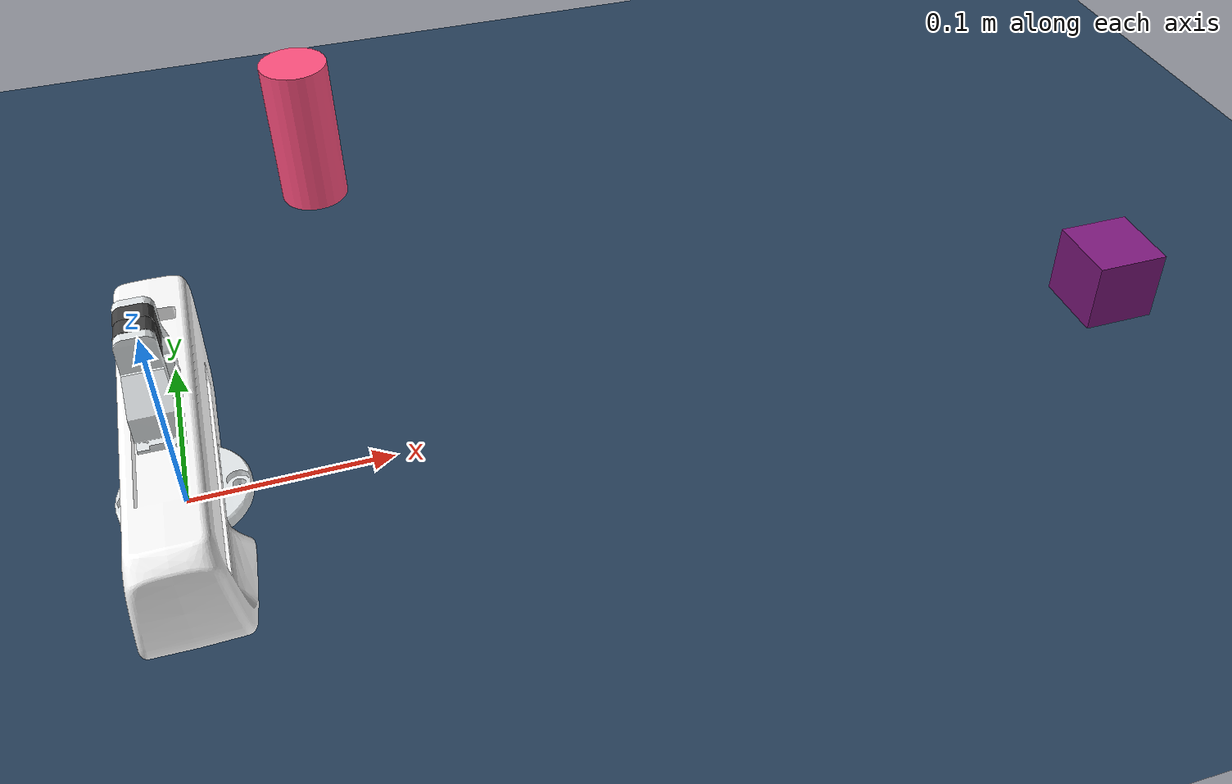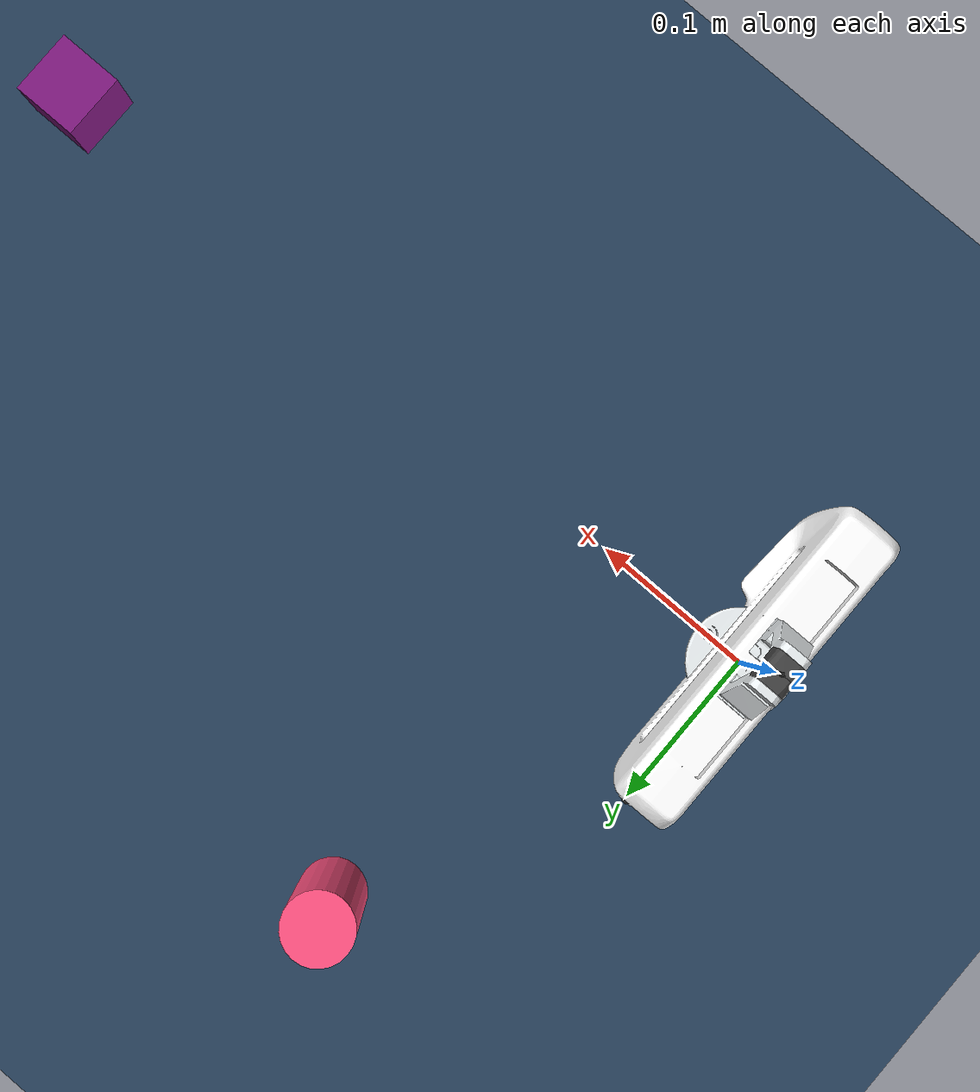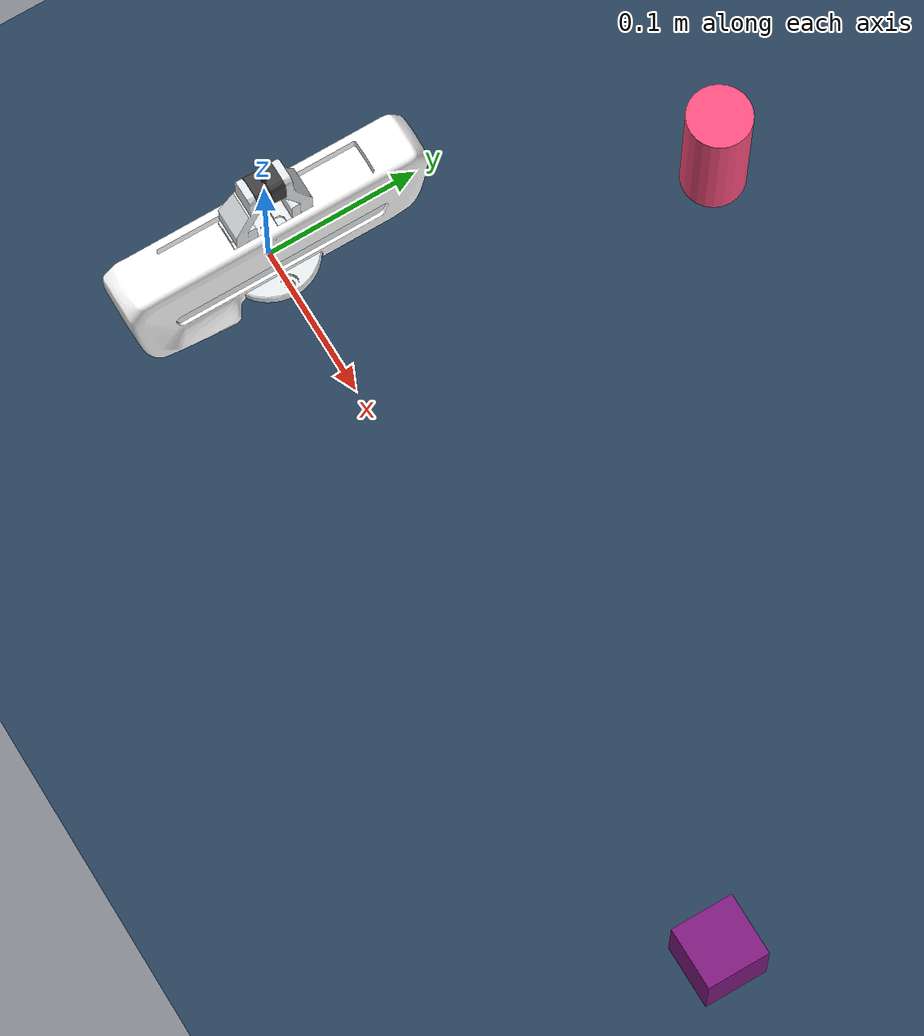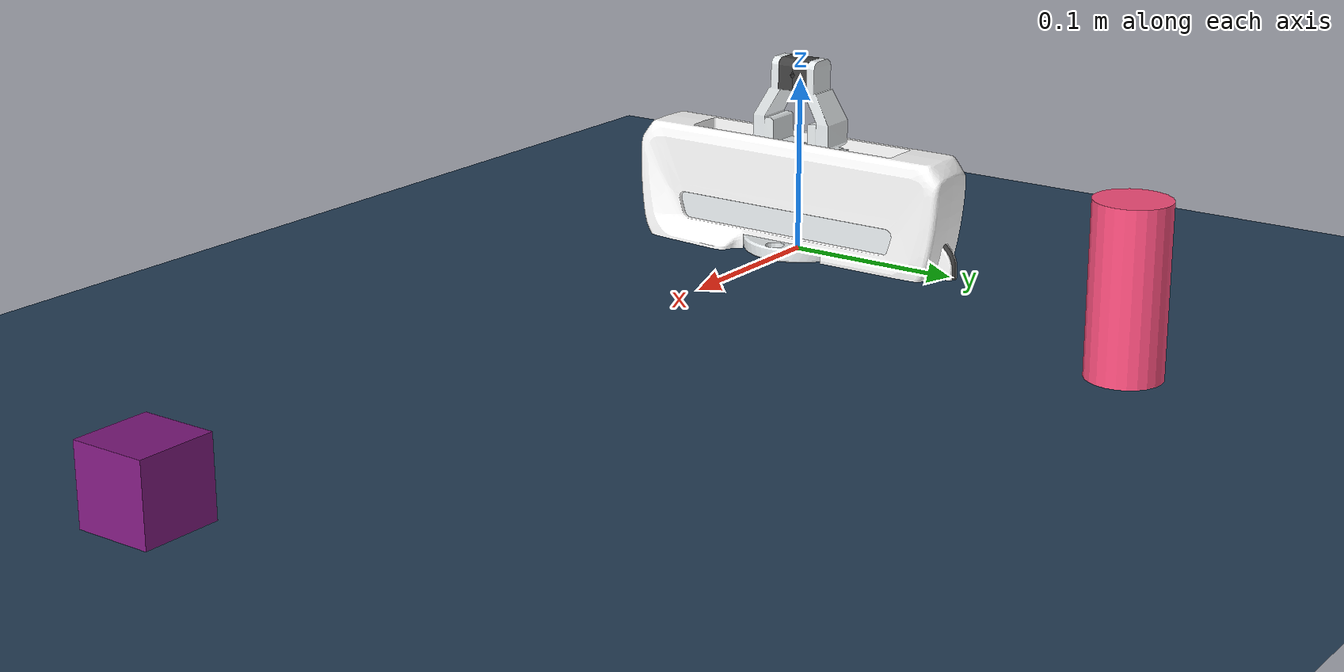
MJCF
<mujoco model="panda scene">

  <include file="k_hand.xml"/>

  <statistic center="0.3 0 0.4" extent="1"/>

  <default>
    <default class="scene">
      <geom contype="10" conaffinity="10"></geom>
    </default>
  </default>

  <visual>
    <headlight diffuse="0.6 0.6 0.6" ambient="0.3 0.3 0.3" specular="0 0 0"/>
    <rgba haze="0.15 0.25 0.35 1"/>
    <global azimuth="120" elevation="-20"/>
  </visual>

  <asset>
    <texture type="skybox" builtin="gradient" rgb1="0.3 0.5 0.7" rgb2="0 0 0" width="512" height="3072"/>
    <texture type="2d" name="groundplane" builtin="checker" mark="edge" rgb1="0.2 0.3 0.4" rgb2="0.1 0.2 0.3"
      markrgb="0.8 0.8 0.8" width="300" height="300"/>
    <material name="groundplane" texture="groundplane" texuniform="true" texrepeat="5 5" reflectance="0.2"/>
  </asset>

  <worldbody>
    <light pos="0 0 1.5" dir="0 0 -1" directional="true"/>
    <geom name="floor" class="scene" size="0 0 0.05" type="plane" material="groundplane"/>
    <body name="box_body" pos="0.5 0 .02"> <!-- this is how you add an object to the scene -->
    	<freejoint name="box_joint"/>
    	<geom name="box_geom" contype="15" conaffinity="15" size=".02 .02 .02" type="box" rgba=".5 .1 .5 1" mass="0.05" friction="2" solimp="0.95 0.99 0.001" solref="0.005 1"/>
    </body>
    <body name="cyl_body" pos="0.0925 0.25 0.04">
    	<freejoint name="cyl_joint"/>
    	<geom name="cyl_geom" contype="15" conaffinity="15" size=".02 .05 .02" type="cylinder" rgba="1 .3125 .5 1" mass="0.05" friction="2" solimp="0.95 0.99 0.001" solref="0.005 1"/>
    </body>
    <body name="test" pos="0.0925 0.25 0.04">
    	<geom name="test" contype="0" conaffinity="0" size=".1 .1 .1" type="sphere" rgba="1 .3125 .5 0" mass="0.05" friction="2" solimp="0.95 0.99 0.001" solref="0.005 1"/>
    </body>

    <body name="body_cam" pos="3 0 .75" xyaxes="0 1 0 0 0 1" mocap="true">
      <camera name="cam" fovy="90"/>
      <geom name="geom_cam" size="0.04 0.04 0.01" type="box" rgba="0 0 0 0" contype="0" conaffinity="0"/>
    </body>
  </worldbody>

</mujoco>

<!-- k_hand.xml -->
<mujoco model="panda hand">
  <compiler angle="radian" meshdir="assets" autolimits="true"/>

  <option integrator="implicitfast"/>

  <default>
    <default class="panda">
      <material specular="0.5" shininess="0.25"/>
      <joint armature="0.1" damping="1" axis="0 0 1" range="-2.8973 2.8973"/>
      <general dyntype="none" biastype="affine" ctrlrange="-2.8973 2.8973" forcerange="-87 87"/>
      <default class="finger">
        <joint axis="0 1 0" type="slide" range="0 0.04"/>
      </default>

      <default class="visual">
        <geom type="mesh" contype="0" conaffinity="0" group="2"/>
      </default>
      <default class="collision">
        <geom type="mesh" group="3" contype="15" conaffinity="15"/>
        <default class="fingertip_pad_collision_1">
          <geom type="box" size="0.0085 0.004 0.0085" pos="0 0.0055 0.0445"/>
        </default>
        <default class="fingertip_pad_collision_2">
          <geom type="box" size="0.003 0.002 0.003" pos="0.0055 0.002 0.05"/>
        </default>
        <default class="fingertip_pad_collision_3">
          <geom type="box" size="0.003 0.002 0.003" pos="-0.0055 0.002 0.05"/>
        </default>
        <default class="fingertip_pad_collision_4">
          <geom type="box" size="0.003 0.002 0.0035" pos="0.0055 0.002 0.0395"/>
        </default>
        <default class="fingertip_pad_collision_5">
          <geom type="box" size="0.003 0.002 0.0035" pos="-0.0055 0.002 0.0395"/>
        </default>
      </default>
    </default>
  </default>

  <asset>
    <material class="panda" name="white" rgba="1 1 1 1"/>
    <material class="panda" name="off_white" rgba="0.901961 0.921569 0.929412 1"/>
    <material class="panda" name="black" rgba="0.25 0.25 0.25 1"/>

    <!-- Collision meshes -->
    <mesh name="hand_c" file="hand.stl"/>

    <!-- Visual meshes -->
    <mesh file="hand_0.obj"/>
    <mesh file="hand_1.obj"/>
    <mesh file="hand_2.obj"/>
    <mesh file="hand_3.obj"/>
    <mesh file="hand_4.obj"/>
    <mesh file="finger_0.obj"/>
    <mesh file="finger_1.obj"/>
  </asset>

  <worldbody>
    <body name="hand" childclass="panda" quat="0 0 0 1">
      <freejoint name="hand_joint"/>
      <inertial mass="0.73" pos="-0.01 0 0.03" diaginertia="0.001 0.0025 0.0017"/>
      <geom mesh="hand_0" material="off_white" class="visual"/>
      <geom mesh="hand_1" material="black" class="visual"/>
      <geom mesh="hand_2" material="black" class="visual"/>
      <geom mesh="hand_3" material="white" class="visual"/>
      <geom mesh="hand_4" material="off_white" class="visual"/>
      <geom mesh="hand_c" class="collision"/>
      <body name="left_finger" pos="0 0 0.0584">
        <inertial mass="0.015" pos="0 0 0" diaginertia="2.375e-6 2.375e-6 7.5e-7"/>
        <joint name="finger_joint1" class="finger"/>
        <geom mesh="finger_0" material="off_white" class="visual"/>
        <geom mesh="finger_1" material="black" class="visual"/>
        <geom mesh="finger_0" class="collision"/>
        <geom class="fingertip_pad_collision_1"/>
        <geom class="fingertip_pad_collision_2"/>
        <geom class="fingertip_pad_collision_3"/>
        <geom class="fingertip_pad_collision_4"/>
        <geom class="fingertip_pad_collision_5"/>
      </body>
      <body name="right_finger" pos="0 0 0.0584" quat="0 0 0 1">
        <inertial mass="0.015" pos="0 0 0" diaginertia="2.375e-6 2.375e-6 7.5e-7"/>
        <joint name="finger_joint2" class="finger"/>
        <geom mesh="finger_0" material="off_white" class="visual"/>
        <geom mesh="finger_1" material="black" class="visual"/>
        <geom mesh="finger_0" class="collision"/>
        <geom class="fingertip_pad_collision_1"/>
        <geom class="fingertip_pad_collision_2"/>
        <geom class="fingertip_pad_collision_3"/>
        <geom class="fingertip_pad_collision_4"/>
        <geom class="fingertip_pad_collision_5"/>
      </body>
    </body>
  </worldbody>

  <contact>
    <exclude body1="hand" body2="left_finger"/>
    <exclude body1="hand" body2="right_finger"/>
  </contact>

  <tendon>
    <fixed name="split">
      <joint joint="finger_joint1" coef="0.5"/>
      <joint joint="finger_joint2" coef="0.5"/>
    </fixed>
  </tendon>

  <equality>
    <joint joint1="finger_joint1" joint2="finger_joint2" solimp="0.95 0.99 0.001" solref="0.005 1"/>
  </equality>

  <actuator>
    <!-- Remap original ctrlrange (0, 0.04) to (0, 255): 0.04 * 100 / 255 = 0.01568627451 -->
    <general class="panda" name="actuator8" tendon="split" forcerange="-100 100" ctrlrange="0 255"
      gainprm="0.01568627451 0 0" biasprm="0 -100 -10"/>
  </actuator>
</mujoco>
